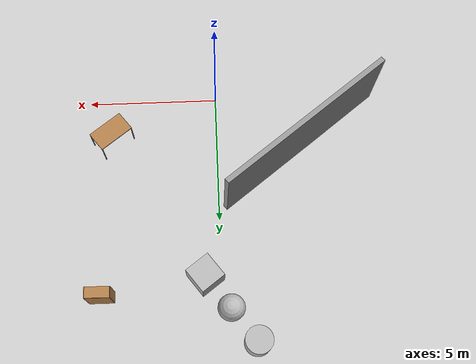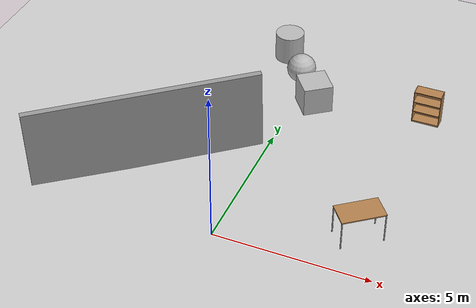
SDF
<sdf version="1.6">
 <world name="default">
  <model name="ground_plane">
   <static>1</static>
   <link name="link">
    <collision name="collision">
     <geometry><plane><normal>0 0 1</normal><size>100 100</size></plane></geometry>
     <surface><friction><ode><mu>100</mu><mu2>50</mu2></ode></friction></surface>
    </collision>
    <visual name="visual">
     <cast_shadows>0</cast_shadows>
     <geometry><plane><normal>0 0 1</normal><size>100 100</size></plane></geometry>
     <material>
      <script><uri>file://media/materials/scripts/gazebo.material</uri><name>Gazebo/Grey</name></script>
     </material>
    </visual>
   </link>
  </model>
  <model name="bookshelf">
   <static>1</static>
   <link name="link">
    <inertial><mass>1</mass></inertial>
    <collision name="back">
     <pose>0 0.005 0.6 0 -0 0</pose>
     <geometry><box><size>0.9 0.01 1.2</size></box></geometry>
    </collision>
    <visual name="visual1">
     <pose>0 0.005 0.6 0 -0 0</pose>
     <geometry><box><size>0.9 0.01 1.2</size></box></geometry>
     <material>
      <script><uri>file://media/materials/scripts/gazebo.material</uri><name>Gazebo/Wood</name></script>
     </material>
    </visual>
    <collision name="left_side">
     <pose>0.45 -0.195 0.6 0 -0 0</pose>
     <geometry><box><size>0.02 0.4 1.2</size></box></geometry>
    </collision>
    <visual name="visual2">
     <pose>0.45 -0.195 0.6 0 -0 0</pose>
     <geometry><box><size>0.02 0.4 1.2</size></box></geometry>
     <material>
      <script><uri>file://media/materials/scripts/gazebo.material</uri><name>Gazebo/Wood</name></script>
     </material>
    </visual>
    <collision name="right_side">
     <pose>-0.45 -0.195 0.6 0 -0 0</pose>
     <geometry><box><size>0.02 0.4 1.2</size></box></geometry>
    </collision>
    <visual name="visual3">
     <pose>-0.45 -0.195 0.6 0 -0 0</pose>
     <geometry><box><size>0.02 0.4 1.2</size></box></geometry>
     <material>
      <script><uri>file://media/materials/scripts/gazebo.material</uri><name>Gazebo/Wood</name></script>
     </material>
    </visual>
    <collision name="bottom">
     <pose>0 -0.195 0.03 0 -0 0</pose>
     <geometry><box><size>0.88 0.4 0.06</size></box></geometry>
    </collision>
    <visual name="visual4">
     <pose>0 -0.195 0.03 0 -0 0</pose>
     <geometry><box><size>0.88 0.4 0.06</size></box></geometry>
     <material>
      <script><uri>file://media/materials/scripts/gazebo.material</uri><name>Gazebo/Wood</name></script>
     </material>
    </visual>
    <collision name="top">
     <pose>0 -0.195 1.19 0 -0 0</pose>
     <geometry><box><size>0.88 0.4 0.02</size></box></geometry>
    </collision>
    <visual name="visual5">
     <pose>0 -0.195 1.19 0 -0 0</pose>
     <geometry><box><size>0.88 0.4 0.02</size></box></geometry>
     <material>
      <script><uri>file://media/materials/scripts/gazebo.material</uri><name>Gazebo/Wood</name></script>
     </material>
    </visual>
    <collision name="low_shelf">
     <pose>0 -0.195 0.43 0 -0 0</pose>
     <geometry><box><size>0.88 0.4 0.02</size></box></geometry>
    </collision>
    <visual name="visual6">
     <pose>0 -0.195 0.43 0 -0 0</pose>
     <geometry><box><size>0.88 0.4 0.02</size></box></geometry>
     <material>
      <script><uri>file://media/materials/scripts/gazebo.material</uri><name>Gazebo/Wood</name></script>
     </material>
    </visual>
    <collision name="high_shelf">
     <pose>0 -0.195 0.8 0 -0 0</pose>
     <geometry><box><size>0.88 0.4 0.02</size></box></geometry>
    </collision>
    <visual name="visual7">
     <pose>0 -0.195 0.8 0 -0 0</pose>
     <geometry><box><size>0.88 0.4 0.02</size></box></geometry>
     <material>
      <script><uri>file://media/materials/scripts/gazebo.material</uri><name>Gazebo/Wood</name></script>
     </material>
    </visual>
   </link>
   <pose>4.37362 8.00409 0 0 -0 0</pose>
  </model>
  <model name="textured_shapes">
   <pose>-0.307519 8.3938 0.5 0 -0 0.64384</pose>
   <link name="box">
    <pose>0 -1.5 0 0 -0 0</pose>
    <collision name="collision"><geometry><box><size>1 1 1</size></box></geometry></collision>
    <visual name="visual">
     <geometry><box><size>1 1 1</size></box></geometry>
     <material>
      <script>
       <uri>model://textured_shapes/materials/scripts</uri>
       <uri>model://textured_shapes/materials/textures</uri>
       <name>TexturedShape/Squares</name>
      </script>
     </material>
    </visual>
    <inertial>
     <inertia><ixx>1</ixx><ixy>0</ixy><ixz>0</ixz><iyy>1</iyy><iyz>0</iyz><izz>1</izz></inertia>
     <mass>1</mass>
    </inertial>
   </link>
   <link name="sphere">
    <collision name="collision"><geometry><sphere><radius>0.5</radius></sphere></geometry></collision>
    <visual name="visual">
     <geometry><sphere><radius>0.5</radius></sphere></geometry>
     <material>
      <script>
       <uri>model://textured_shapes/materials/scripts</uri>
       <uri>model://textured_shapes/materials/textures</uri>
       <name>TexturedShape/Squares</name>
      </script>
     </material>
    </visual>
    <inertial>
     <inertia><ixx>1</ixx><ixy>0</ixy><ixz>0</ixz><iyy>1</iyy><iyz>0</iyz><izz>1</izz></inertia>
     <mass>1</mass>
    </inertial>
   </link>
   <link name="cylinder">
    <pose>0 1.5 0 0 -0 0</pose>
    <collision name="collision">
     <geometry><cylinder><radius>0.5</radius><length>1</length></cylinder></geometry>
    </collision>
    <visual name="visual">
     <geometry><cylinder><radius>0.5</radius><length>1</length></cylinder></geometry>
     <material>
      <script>
       <uri>model://textured_shapes/materials/scripts</uri>
       <uri>model://textured_shapes/materials/textures</uri>
       <name>TexturedShape/Squares</name>
      </script>
     </material>
    </visual>
    <inertial>
     <inertia><ixx>1</ixx><ixy>0</ixy><ixz>0</ixz><iyy>1</iyy><iyz>0</iyz><izz>1</izz></inertia>
     <mass>1</mass>
    </inertial>
   </link>
  </model>
  <model name="grey_wall">
   <static>1</static>
   <link name="link">
    <pose>0 0 1.4 0 -0 0</pose>
    <collision name="collision"><geometry><box><size>7.5 0.2 2.8</size></box></geometry></collision>
    <visual name="visual">
     <cast_shadows>0</cast_shadows>
     <geometry><box><size>7.5 0.2 2.8</size></box></geometry>
     <material>
      <script>
       <uri>model://grey_wall/materials/scripts</uri>
       <uri>model://grey_wall/materials/textures</uri>
       <name>vrc/grey_wall</name>
      </script>
     </material>
    </visual>
   </link>
   <pose>-3.18514 2.23987 4e-06 0.01417 -0.022146 0.663578</pose>
  </model>
  <model name="table_2">
   <static>0</static>
   <link name="link">
    <collision name="surface">
     <pose>0 0 1 0 -0 0</pose>
     <geometry><box><size>1.5 0.8 0.03</size></box></geometry>
     <surface><friction><ode><mu>0.6</mu><mu2>0.6</mu2></ode></friction></surface>
    </collision>
    <visual name="visual1">
     <pose>0 0 1 0 -0 0</pose>
     <geometry><box><size>1.4 0.8 0.04</size></box></geometry>
     <material>
      <script><uri>file://media/materials/scripts/gazebo.material</uri><name>Gazebo/Wood</name></script>
     </material>
    </visual>
    <collision name="front_left_leg">
     <pose>0.68 0.38 0.5 0 -0 0</pose>
     <geometry><cylinder><radius>0.02</radius><length>1</length></cylinder></geometry>
    </collision>
    <visual name="front_left_leg">
     <pose>0.68 0.38 0.5 0 -0 0</pose>
     <geometry><cylinder><radius>0.02</radius><length>1</length></cylinder></geometry>
     <material>
      <script><uri>file://media/materials/scripts/gazebo.material</uri><name>Gazebo/Grey</name></script>
     </material>
    </visual>
    <collision name="front_right_leg">
     <pose>0.68 -0.38 0.5 0 -0 0</pose>
     <geometry><cylinder><radius>0.02</radius><length>1</length></cylinder></geometry>
    </collision>
    <visual name="front_right_leg">
     <pose>0.68 -0.38 0.5 0 -0 0</pose>
     <geometry><cylinder><radius>0.02</radius><length>1</length></cylinder></geometry>
     <material>
      <script><uri>file://media/materials/scripts/gazebo.material</uri><name>Gazebo/Grey</name></script>
     </material>
    </visual>
    <collision name="back_right_leg">
     <pose>-0.68 -0.38 0.5 0 -0 0</pose>
     <geometry><cylinder><radius>0.02</radius><length>1</length></cylinder></geometry>
    </collision>
    <visual name="back_right_leg">
     <pose>-0.68 -0.38 0.5 0 -0 0</pose>
     <geometry><cylinder><radius>0.02</radius><length>1</length></cylinder></geometry>
     <material>
      <script><uri>file://media/materials/scripts/gazebo.material</uri><name>Gazebo/Grey</name></script>
     </material>
    </visual>
    <collision name="back_left_leg">
     <pose>-0.68 0.38 0.5 0 -0 0</pose>
     <geometry><cylinder><radius>0.02</radius><length>1</length></cylinder></geometry>
    </collision>
    <visual name="back_left_leg">
     <pose>-0.68 0.38 0.5 0 -0 0</pose>
     <geometry><cylinder><radius>0.02</radius><length>1</length></cylinder></geometry>
     <material>
      <script><uri>file://media/materials/scripts/gazebo.material</uri><name>Gazebo/Grey</name></script>
     </material>
    </visual>
    <inertial>
     <inertia><ixx>1</ixx><ixy>0</ixy><ixz>0</ixz><iyy>1</iyy><iyz>0</iyz><izz>1</izz></inertia>
     <mass>1</mass>
    </inertial>
   </link>
   <pose>4.02933 1.6454 0 0 -0 0.661845</pose>
  </model>
 </world>
</sdf>
